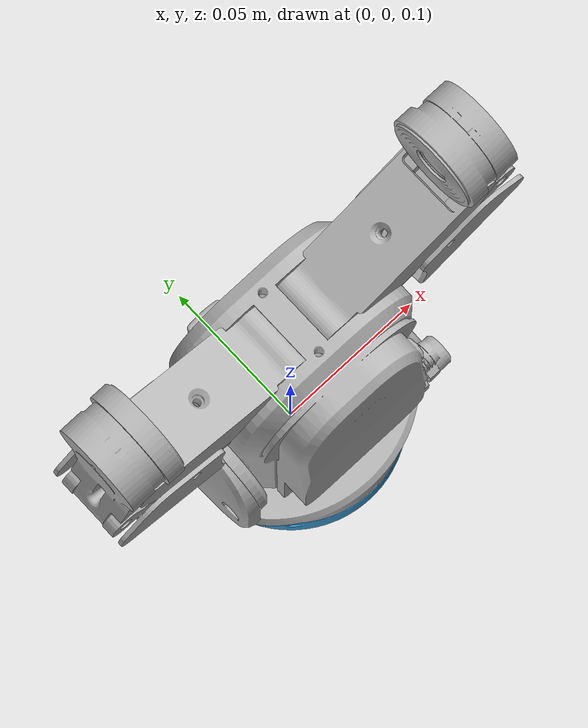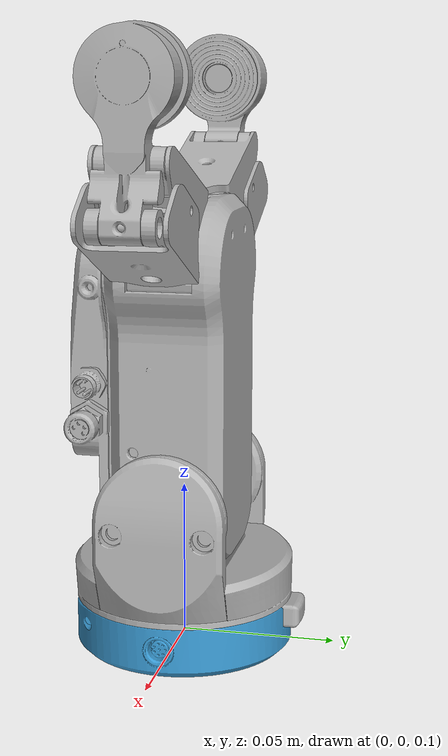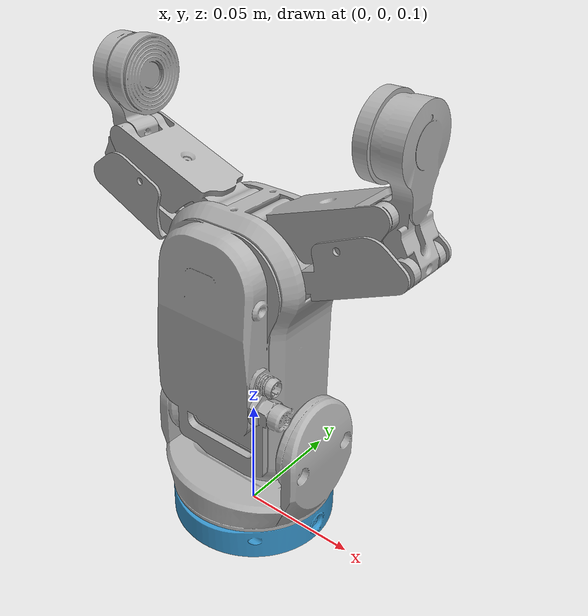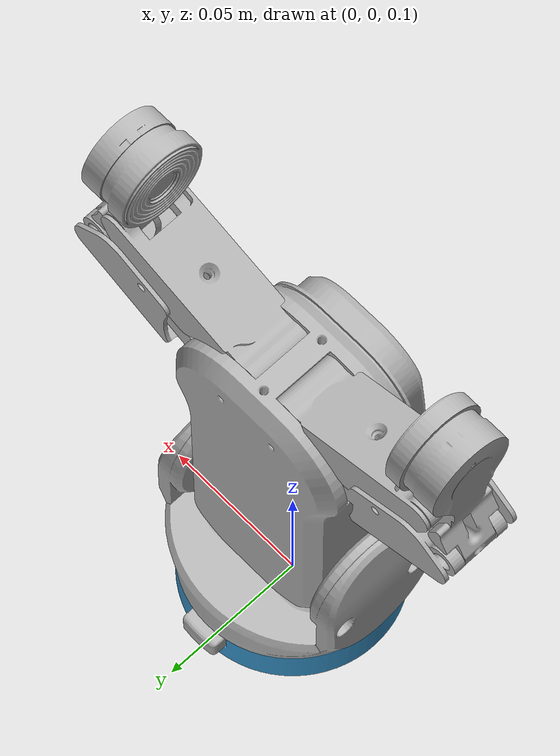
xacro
<?xml version="1.0"?>
<robot name="onrobot_rg2ft" xmlns:xacro="http://ros.org/wiki/xacro">
  <!-- import main macro -->
  <xacro:include filename="$(find onrobot_rg2ft_description)/urdf/onrobot_rg2ft_macro.xacro" />

  <!-- parameters -->
  <xacro:arg name="transmission_hw_interface" default="hardware_interface/PositionJointInterface" />

  <!-- gripper -->
  <xacro:onrobot_rg2ft
    prefix=""
    hw_interface="$(arg transmission_hw_interface)"
    parent="world"
  >
    <origin xyz="0 0 0.1" rpy="0 0 0" />
  </xacro:onrobot_rg2ft>

  <link name="world" />

  <gazebo>
    <plugin name="ros_control" filename="libgazebo_ros_control.so"></plugin>
  </gazebo>
</robot>

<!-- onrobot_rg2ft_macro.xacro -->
<robot name="onrobot_rg2ft" xmlns:xacro="http://www.ros.org/wiki/xacro">

  <xacro:include filename="$(find onrobot_rg2ft_description)/urdf/onrobot_rg2ft_transmission.xacro" />
  <xacro:include filename="$(find onrobot_rg2ft_description)/urdf/onrobot_rg2ft_gazebo.xacro" />

  <xacro:macro name="onrobot_rg2ft"
    params="
    prefix
    parent
    hw_interface
    *origin"
  >

    <xacro:onrobot_rg2ft_transmission prefix="${prefix}" hw_interface="${hw_interface}" />
    <xacro:onrobot_rg2ft_gazebo prefix="${prefix}" />

    <xacro:property name="lower_limit" value="0" />
    <xacro:property name="upper_limit" value="1.18" />
    <xacro:property name="max_effort" value="50.0" />
    <xacro:property name="max_velocity" value="2.0" />

    <material name="silver">
      <color rgba="0.700 0.700 0.700 1.000" />
    </material>
    <material name="blue">
      <color rgba="${55/255} ${151/255} ${207/255} 1.000" />
    </material>

    <link name="${prefix}quick_changer">
      <inertial>
        <origin xyz="0.0014673787228634701 -0.0007395056519161622 0.00391087859435364" rpy="0 0 0" />
        <mass value="0.05802030412577654" />
        <inertia ixx="2e-05" iyy="2.7e-05" izz="4.5e-05" ixy="-0.0" iyz="0.0" ixz="-0.0" />
      </inertial>
      <visual>
        <origin xyz="0 0 0" rpy="0 0 0" />
        <geometry>
          <mesh filename="package://onrobot_rg2ft_description/meshes/visual/quick_changer.stl"
            scale="0.001 0.001 0.001" />
        </geometry>
        <material name="blue" />
      </visual>
      <collision>
        <origin xyz="0 0 0" rpy="0 0 0" />
        <geometry>
          <mesh filename="package://onrobot_rg2ft_description/meshes/collision/quick_changer.stl"
            scale="0.001 0.001 0.001" />
        </geometry>
      </collision>
    </link>

    <link name="${prefix}gripper_body">
      <inertial>
        <origin xyz="0.0272971231150397 -0.002438088956580745 0.035297715994502724" rpy="0 0 0" />
        <mass value="0.5707794664902835" />
        <inertia ixx="0.000622" iyy="0.000662" izz="0.000226" ixy="3e-06" iyz="1.8e-05" ixz="0.0" />
      </inertial>
      <visual>
        <origin xyz="0.02705 -0.0 -0.047" rpy="0 0 0" />
        <geometry>
          <mesh filename="package://onrobot_rg2ft_description/meshes/visual/gripper_body.stl"
            scale="0.001 0.001 0.001" />
        </geometry>
        <material name="silver" />
      </visual>
      <collision>
        <origin xyz="0.02705 -0.0 -0.047" rpy="0 0 0" />
        <geometry>
          <mesh filename="package://onrobot_rg2ft_description/meshes/collision/gripper_body.stl"
            scale="0.001 0.001 0.001" />
        </geometry>
      </collision>
    </link>

    <link name="${prefix}angle_bracket">
      <inertial>
        <origin xyz="-0.00023577776357350244 0.0006406606087327927 0.01993861451986476" rpy="0 0 0" />
        <mass value="0.19757034519537245" />
        <inertia ixx="9.8e-05" iyy="0.000145" izz="0.000155" ixy="-0.0" iyz="2e-06" ixz="-1e-06" />
      </inertial>
      <visual>
        <origin xyz="-0.0 -0.0 -0.00255" rpy="0 0 0" />
        <geometry>
          <mesh filename="package://onrobot_rg2ft_description/meshes/visual/angle_bracket.stl"
            scale="0.001 0.001 0.001" />
        </geometry>
        <material name="silver" />
      </visual>
      <collision>
        <origin xyz="-0.0 -0.0 -0.00255" rpy="0 0 0" />
        <geometry>
          <mesh filename="package://onrobot_rg2ft_description/meshes/collision/angle_bracket.stl"
            scale="0.001 0.001 0.001" />
        </geometry>
      </collision>
    </link>

    <link name="${prefix}left_inner_knuckle">
      <inertial>
        <origin xyz="0.01762916513992015 0.010471874847992522 0.017068183318320468" rpy="0 0 0" />
        <mass value="0.024337519273275633" />
        <inertia ixx="5e-06" iyy="7e-06" izz="5e-06" ixy="-0.0" iyz="-0.0" ixz="-3e-06" />
      </inertial>
      <visual>
        <origin xyz="-0.0075 0.009367 -0.139397" rpy="0 0 0" />
        <geometry>
          <mesh filename="package://onrobot_rg2ft_description/meshes/visual/left_inner_knuckle.stl"
            scale="0.001 0.001 0.001" />
        </geometry>
        <material name="silver" />
      </visual>
      <collision>
        <origin xyz="-0.0075 0.009367 -0.139397" rpy="0 0 0" />
        <geometry>
          <mesh filename="package://onrobot_rg2ft_description/meshes/collision/left_inner_knuckle.stl"
            scale="0.001 0.001 0.001" />
        </geometry>
      </collision>
    </link>

    <link name="${prefix}right_outer_knuckle">
      <inertial>
        <origin xyz="-0.012312223780380358 0.010369678145266329 0.010203759185649544" rpy="0 0 0" />
        <mass value="0.041583686281793396" />
        <inertia ixx="1e-05" iyy="1.6e-05" izz="1e-05" ixy="0.0" iyz="-0.0" ixz="7e-06" />
      </inertial>
      <visual>
        <origin xyz="0.017 0.009534 -0.122898" rpy="0 0 0" />
        <geometry>
          <mesh filename="package://onrobot_rg2ft_description/meshes/visual/right_outer_knuckle.stl"
            scale="0.001 0.001 0.001" />
        </geometry>
        <material name="silver" />
      </visual>
      <collision>
        <origin xyz="0.017 0.009534 -0.122898" rpy="0 0 0" />
        <geometry>
          <mesh filename="package://onrobot_rg2ft_description/meshes/collision/right_outer_knuckle.stl"
            scale="0.001 0.001 0.001" />
        </geometry>
      </collision>
    </link>

    <link name="${prefix}left_outer_knuckle">
      <inertial>
        <origin xyz="0.01231204747983699 0.010369678145260136 0.01020375918419171" rpy="0 0 0" />
        <mass value="0.04158368628179342" />
        <inertia ixx="1e-05" iyy="1.6e-05" izz="1e-05" ixy="-0.0" iyz="-0.0" ixz="-7e-06" />
      </inertial>
      <visual>
        <origin xyz="-0.017 0.009534 -0.122898" rpy="0 0 0" />
        <geometry>
          <mesh filename="package://onrobot_rg2ft_description/meshes/visual/left_outer_knuckle.stl"
            scale="0.001 0.001 0.001" />
        </geometry>
        <material name="silver" />
      </visual>
      <collision>
        <origin xyz="-0.017 0.009534 -0.122898" rpy="0 0 0" />
        <geometry>
          <mesh filename="package://onrobot_rg2ft_description/meshes/collision/left_outer_knuckle.stl"
            scale="0.001 0.001 0.001" />
        </geometry>
      </collision>
    </link>

    <link name="${prefix}left_inner_finger">
      <inertial>
        <origin xyz="-0.009341477027312806 0.006108535220686467 0.03133683897712786" rpy="0 0 0" />
        <mass value="0.03203868115594587" />
        <inertia ixx="9e-06" iyy="9e-06" izz="2e-06" ixy="0.0" iyz="-0.0" ixz="2e-06" />
      </inertial>
      <visual>
        <origin xyz="-0.056748 0.00475 -0.160866" rpy="0 0 0" />
        <geometry>
          <mesh filename="package://onrobot_rg2ft_description/meshes/visual/left_inner_finger.stl"
            scale="0.001 0.001 0.001" />
        </geometry>
        <material name="silver" />
      </visual>
      <collision>
        <origin xyz="-0.056748 0.00475 -0.160866" rpy="0 0 0" />
        <geometry>
          <mesh filename="package://onrobot_rg2ft_description/meshes/collision/left_inner_finger.stl"
            scale="0.001 0.001 0.001" />
        </geometry>
      </collision>
    </link>

    <link name="${prefix}right_inner_finger">
      <inertial>
        <origin xyz="0.009341300963273541 0.006108535097342211 0.03133683984830843" rpy="0 0 0" />
        <mass value="0.032038680057528524" />
        <inertia ixx="9e-06" iyy="9e-06" izz="2e-06" ixy="-0.0" iyz="-0.0" ixz="-2e-06" />
      </inertial>
      <visual>
        <origin xyz="0.056748 0.00475 -0.160866" rpy="0 0 0" />
        <geometry>
          <mesh filename="package://onrobot_rg2ft_description/meshes/visual/right_inner_finger.stl"
            scale="0.001 0.001 0.001" />
        </geometry>
        <material name="silver" />
      </visual>
      <collision>
        <origin xyz="0.056748 0.00475 -0.160866" rpy="0 0 0" />
        <geometry>
          <mesh filename="package://onrobot_rg2ft_description/meshes/collision/right_inner_finger.stl"
            scale="0.001 0.001 0.001" />
        </geometry>
      </collision>
    </link>

    <link name="${prefix}right_inner_knuckle">
      <inertial>
        <origin xyz="-0.017629341439301484 0.010471874848001397 0.017068183319570135" rpy="0 0 0" />
        <mass value="0.024337519273275623" />
        <inertia ixx="5e-06" iyy="7e-06" izz="5e-06" ixy="0.0" iyz="-0.0" ixz="3e-06" />
      </inertial>
      <visual>
        <origin xyz="0.0075 0.009367 -0.139397" rpy="0 0 0" />
        <geometry>
          <mesh filename="package://onrobot_rg2ft_description/meshes/visual/right_inner_knuckle.stl"
            scale="0.001 0.001 0.001" />
        </geometry>
        <material name="silver" />
      </visual>
      <collision>
        <origin xyz="0.0075 0.009367 -0.139397" rpy="0 0 0" />
        <geometry>
          <mesh filename="package://onrobot_rg2ft_description/meshes/collision/right_inner_knuckle.stl"
            scale="0.001 0.001 0.001" />
        </geometry>
      </collision>
    </link>

    <joint name="${prefix}quick_changer_joint" type="fixed">
      <parent link="${parent}" />
      <child link="${prefix}quick_changer" />
      <xacro:insert_block name="origin" />
    </joint>

    <joint name="${prefix}gripper_body_joint" type="fixed">
      <origin xyz="-0.02705 0.0 0.04445" rpy="${.58 * pi/180} 0 0" />
      <parent link="${prefix}angle_bracket" />
      <child link="${prefix}gripper_body" />
    </joint>

    <joint name="${prefix}angle_bracket_joint" type="fixed">
      <origin xyz="0.0 0.0 0.00255" rpy="0 0 0" />
      <parent link="${prefix}quick_changer" />
      <child link="${prefix}angle_bracket" />
    </joint>

    <joint name="${prefix}left_inner_knuckle_joint" type="revolute">
      <origin xyz="0.03455 -0.009367 0.092397" rpy="0 ${23.8 *pi/180} 0" />
      <parent link="${prefix}gripper_body" />
      <child link="${prefix}left_inner_knuckle" />
      <axis xyz="-0.0 0.999949 -0.010122" />
      <limit upper="${-(lower_limit-0.01)}" lower="${-(upper_limit+0.01)}" velocity="${max_velocity}"
        effort="${max_effort}" />
      <mimic joint="${prefix}finger_joint" multiplier="-1" offset="0" />
    </joint>

    <joint name="${prefix}finger_joint" type="revolute">
      <origin xyz="0.01005 -0.009534 0.075898" rpy="0 ${-23.8 *pi/180} 0" />
      <parent link="${prefix}gripper_body" />
      <child link="${prefix}right_outer_knuckle" />
      <axis xyz="-0.0 0.999949 -0.010122" />
      <limit lower="${lower_limit}" upper="${upper_limit}" velocity="${max_velocity}"
        effort="${max_effort}" />
    </joint>

    <joint name="${prefix}left_outer_knuckle_joint" type="revolute">
      <origin xyz="0.04405 -0.009534 0.075898" rpy="0 ${23.8 *pi/180} 0" />
      <parent link="${prefix}gripper_body" />
      <child link="${prefix}left_outer_knuckle" />
      <axis xyz="-0.0 0.999949 -0.010122" />
      <limit upper="${-(lower_limit-0.01)}" lower="${-(upper_limit+0.01)}" velocity="${max_velocity}"
        effort="${max_effort}" />
      <mimic joint="${prefix}finger_joint" multiplier="-1" offset="0" />
    </joint>

    <joint name="${prefix}left_inner_finger_joint" type="revolute">
      <origin xyz="0.039748 0.004784 0.037968" rpy="0 ${-23.8 *pi/180} 0" />
      <parent link="${prefix}left_outer_knuckle" />
      <child link="${prefix}left_inner_finger" />
      <axis xyz="0.0 -0.999949 0.010122" />
      <limit upper="${-(lower_limit-0.01)}" lower="${-(upper_limit+0.01)}" velocity="${max_velocity}"
        effort="${max_effort}" />
      <mimic joint="${prefix}finger_joint" multiplier="-1" offset="0" />
    </joint>

    <joint name="${prefix}right_inner_finger_joint" type="revolute">
      <origin xyz="-0.039748 0.004784 0.037968" rpy="0 ${23.8 *pi/180} 0" />
      <parent link="${prefix}right_outer_knuckle" />
      <child link="${prefix}right_inner_finger" />
      <axis xyz="0.0 0.999949 -0.010122" />
      <limit upper="${-(lower_limit-0.01)}" lower="${-(upper_limit+0.01)}" velocity="${max_velocity}"
        effort="${max_effort}" />
      <mimic joint="${prefix}finger_joint" multiplier="-1" offset="0" />
    </joint>

    <joint name="${prefix}right_inner_knuckle_joint" type="revolute">
      <origin xyz="0.01955 -0.009367 0.092397" rpy="0 ${-23.8 *pi/180} 0" />
      <parent link="${prefix}gripper_body" />
      <child link="${prefix}right_inner_knuckle" />
      <axis xyz="-0.0 0.999949 -0.010122" />
      <limit lower="${lower_limit-0.01}" upper="${upper_limit+0.01}" velocity="${max_velocity}"
        effort="${max_effort}" />
      <mimic joint="${prefix}finger_joint" multiplier="1" offset="0" />
    </joint>

  </xacro:macro>

</robot>
